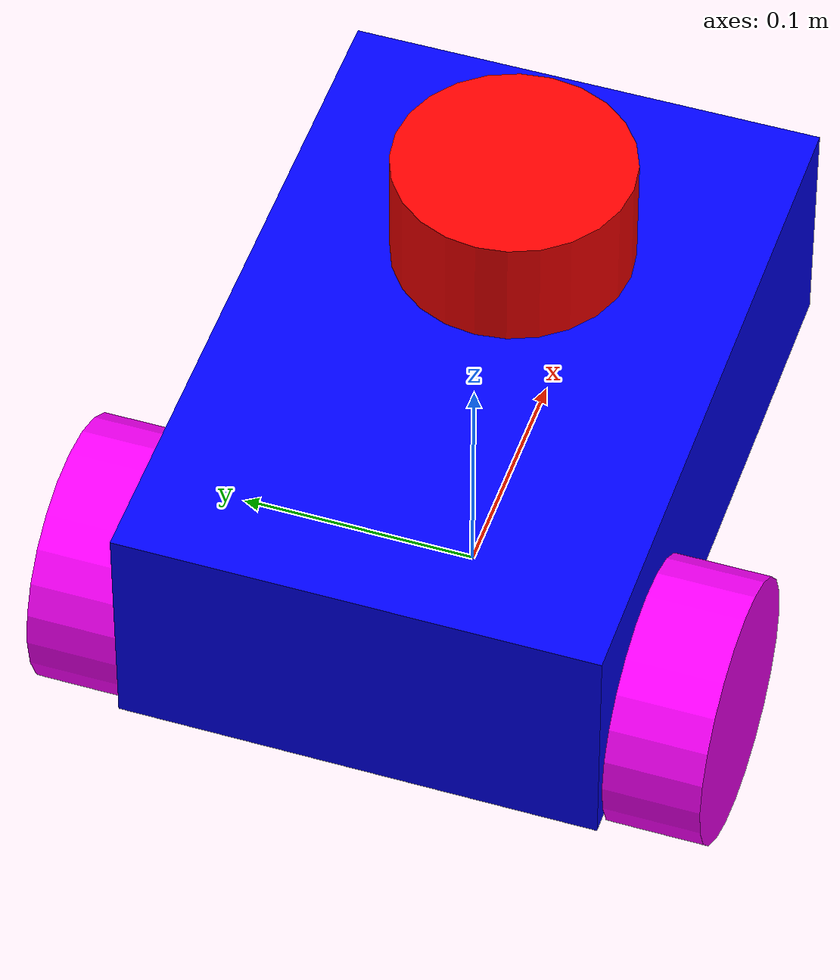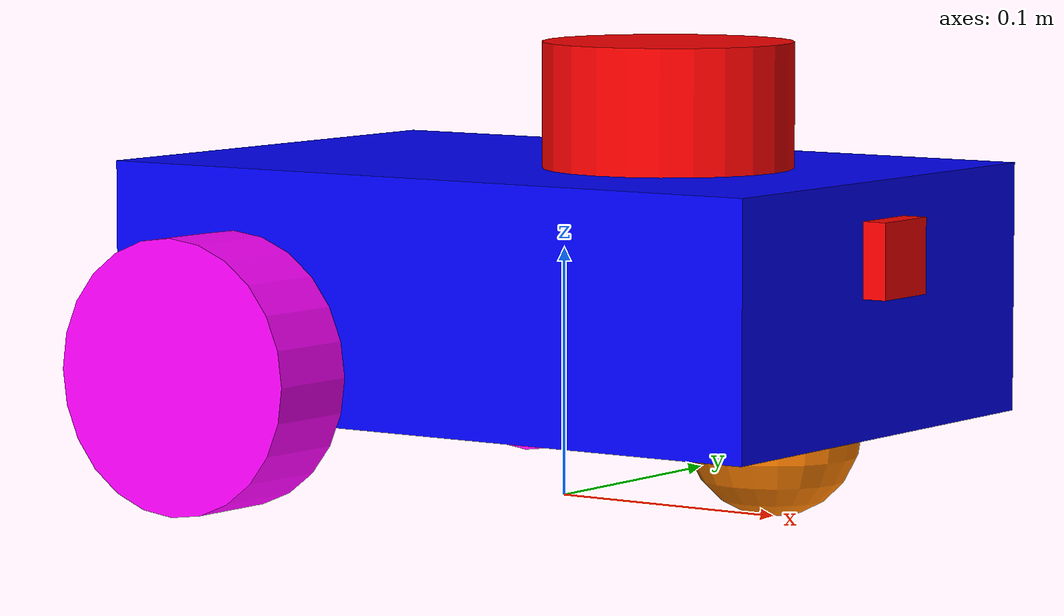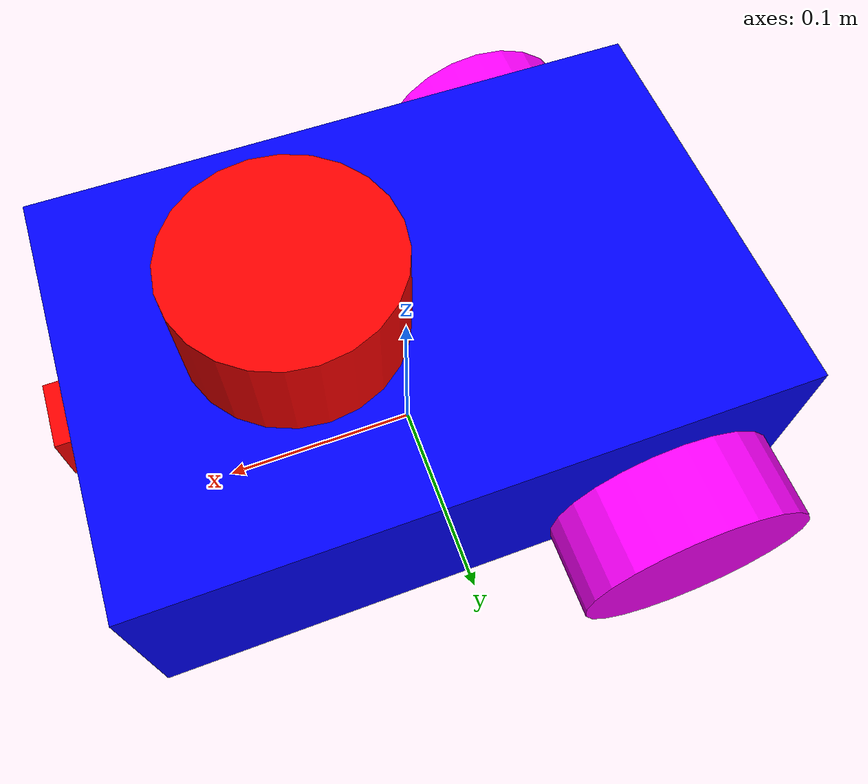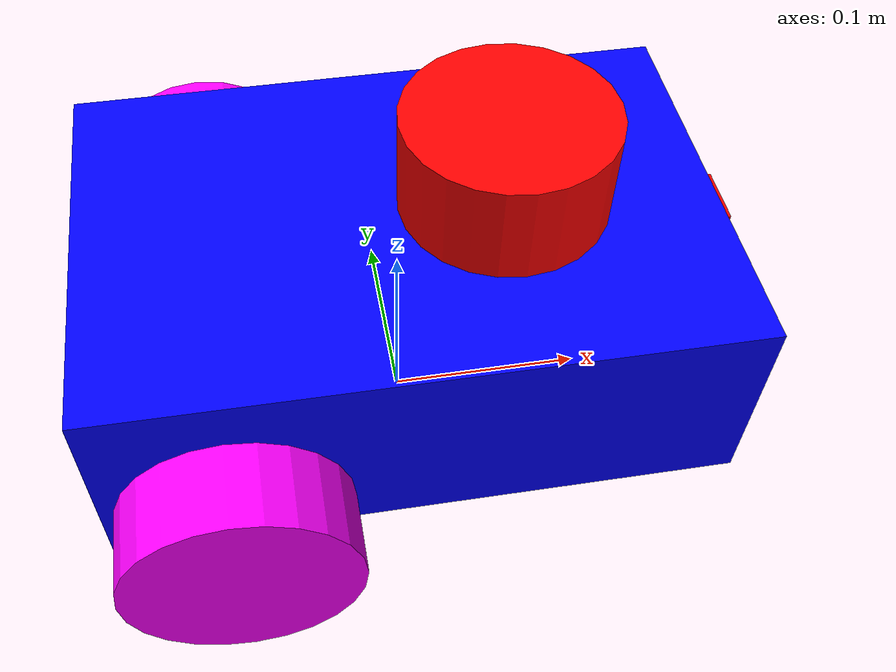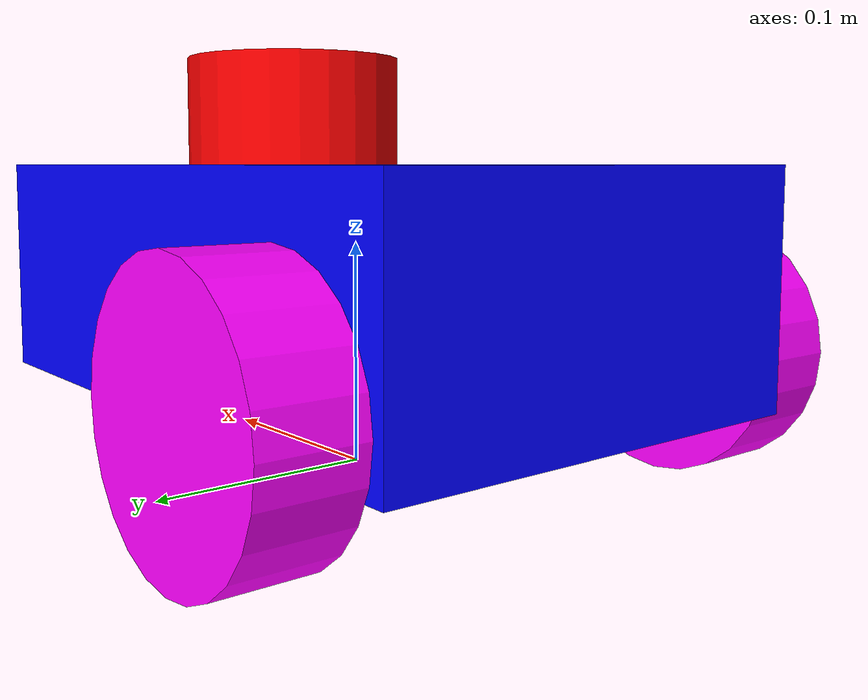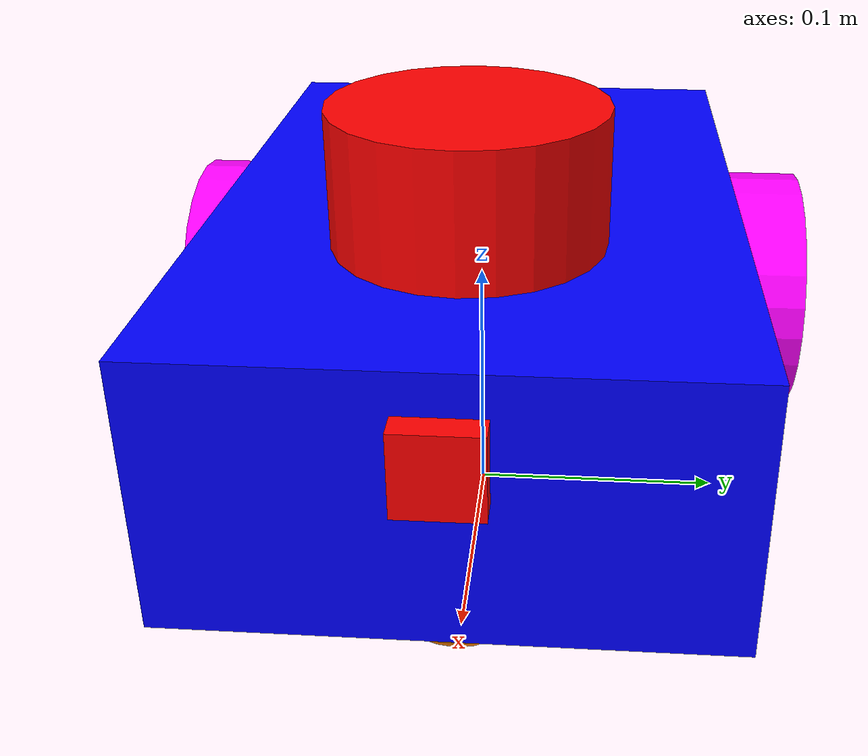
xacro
<?xml version="1.0"?>
<robot xmlns:xacro="http://www.ros.org/wiki/xacro"  name="wally_boxxy">

    <xacro:include filename="$(find wally_boxxy)/description/common_propreties.xacro" />
    <xacro:include filename="$(find wally_boxxy)/description/robot_core.xacro" />
    <xacro:include filename="$(find wally_boxxy)/description/gazebo_control.xacro" />
    <xacro:include filename="$(find wally_boxxy)/description/camera.xacro" />

</robot>

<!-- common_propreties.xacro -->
<robot xmlns:xacro="http://www.ros.org/wiki/xacro">

    <material name="purple">
                <color rgba="1 0 1 1"/>
    </material>

    <material name="blue">
                <color rgba="0 0 1 1"/>
    </material>

    <material name="red">
                <color rgba="1 0 0 1"/>
    </material>

    <material name="grey">
        <color rgba="0.5 0.5 0.5 1" />
    </material>

    <material name="yellow">
        <color rgba="1 1 0 1" />
    </material>

    <material name="orange">
        <color rgba="1 0.5 0 1" />
    </material>

        <xacro:macro name="box_inertia" params="m x y z o_xyz o_rpy">
        <inertial>
            <mass value="${m}" />
            <origin xyz="${o_xyz}" rpy="${o_rpy}" />
            <inertia ixx="${(m/12) * (y*y + z*z)}" ixy="0" ixz="0"
                     iyy="${(m/12) * (x*x + z*z)}" iyz="0"
                     izz="${(m/12) * (x*x + y*y)}" />
        </inertial>
    </xacro:macro>

    <xacro:macro name="cylinder_inertia" params="m r l o_xyz o_rpy">
        <inertial>
            <mass value="${m}" />
            <origin xyz="${o_xyz}" rpy="${o_rpy}" />
            <inertia ixx="${(m/12) * (3*r*r + l*l)}" ixy="0" ixz="0"
                     iyy="${(m/12) * (3*r*r + l*l)}" iyz="0"
                     izz="${(m/2) * (r*r)}" />
        </inertial>
    </xacro:macro>

    <xacro:macro name="sphere_inertia" params="m r o_xyz o_rpy">
        <inertial>
            <mass value="${m}" />
            <origin xyz="${o_xyz}" rpy="${o_rpy}" />
            <inertia ixx="${(2/5) * m * r * r}" ixy="0" ixz="0"
                     iyy="${(2/5) * m * r * r}" iyz="0"
                     izz="${(2/5) * m * r * r}" />
        </inertial>
    </xacro:macro>

</robot>

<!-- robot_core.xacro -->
<robot xmlns:xacro="http://www.ros.org/wiki/xacro">

    <link name="base_link">
    </link>

    <joint name="base_link_joint" type="fixed">
        <parent link="base_link" />
        <child link="chassis" />
        <origin xyz="-0.15 0 0.035" rpy="0 0 0" />
    </joint>

    <link name="chassis">
        <visual>
            <origin xyz="0.15 0 0.05" rpy="0 0 0" />
            <geometry>
                <box size="0.3 0.2 0.1" />
            </geometry>
            <material name="blue" />
        </visual>
        <collision>
            <origin xyz="0.15 0 0.05" rpy="0 0 0" />
            <geometry>
                <box size="0.3 0.2 0.1" />
            </geometry>
        </collision>
        <xacro:box_inertia m="5" x="0.3" y="0.2" z="0.1" o_xyz="0.15 0 0.05" o_rpy="0 0 0" />
    </link>

    <joint name="left_wheel_joint" type="continuous">
        <parent link="chassis" />
        <child link="left_wheel" />
        <origin xyz="0.06 0.12 0.02" rpy="-${pi/2} 0 0" />
        <axis xyz="0 0 1" />
    </joint>

    <link name="left_wheel">
        <visual>
            <origin xyz="0 0 0" rpy="0 0 0" />
            <geometry>
                <cylinder length="0.04" radius="0.055" />
            </geometry>
            <material name="purple" />
        </visual>
        <collision>
            <origin xyz="0 0 0" rpy="0 0 0" />
            <geometry>
                <cylinder length="0.04" radius="0.055" />
            </geometry>
        </collision>
        <xacro:cylinder_inertia m="0.1" r="0.055" l="0.04" o_xyz="0 0 0" o_rpy="0 0 0" />
    </link>

    <joint name="right_wheel_joint" type="continuous">
        <parent link="chassis" />
        <child link="right_wheel" />
        <origin xyz="0.06 -0.12 0.02" rpy="${pi/2} 0 0" />
        <axis xyz="0 0 1" />
    </joint>

    <link name="right_wheel">
        <visual>
            <origin xyz="0 0 0" rpy="0 0 0" />
            <geometry>
                <cylinder length="0.04" radius="0.055" />
            </geometry>
            <material name="purple" />
        </visual>
        <collision>
            <origin xyz="0 0 0" rpy="0 0 0" />
            <geometry>
                <cylinder length="0.04" radius="0.055" />
            </geometry>
        </collision>
        <xacro:cylinder_inertia m="0.1" r="0.055" l="0.04" o_xyz="0 0 0" o_rpy="0 0 0" />
    </link>

    <joint name="caster_wheel_joint" type="fixed">
        <parent link="chassis" />
        <child link="caster_wheel" />
        <origin xyz="0.25 0 0" rpy="0 0 0" />
    </joint>

    <link name="caster_wheel">
        <visual>
            <origin xyz="0 0 0" rpy="0 0 0" />
            <geometry>
                <sphere radius="0.035" />
            </geometry>
            <material name="orange" />
        </visual>
        <collision>
            <origin xyz="0 0 0" rpy="0 0 0" />
            <geometry>
                <sphere radius="0.035" />
            </geometry>
        </collision>
        <xacro:sphere_inertia m="0.1" r="0.035" o_xyz="0 0 0" o_rpy="0 0 0" />
    </link>

    <joint name="laser_joint" type="fixed">
        <parent link="chassis" />
        <child link="laser_frame" />
        <origin xyz="0.2 0 0.1" rpy="0 0 0" />
    </joint>

    <link name="laser_frame">
        <visual>
            <origin xyz="0 0 0.025" rpy="0 0 0" />
            <geometry>
                <cylinder length="0.05" radius="0.05" />
            </geometry>
            <material name="red" />
        </visual>
        <collision>
            <origin xyz="0 0 0" rpy="0 0 0" />
            <geometry>
                <cylinder length="0.05" radius="0.05" />
            </geometry>
        </collision>
        <xacro:cylinder_inertia m="0.1" r="0.05" l="0.05" o_xyz="0 0 0" o_rpy="0 0 0" />
    </link>

    <gazebo reference="laser_frame">
        <sensor name="laser" type="lidar">
            <pose>0 0 0 0 0 0</pose>
            <update_rate>10</update_rate>
            <visualize>true</visualize>
            <always_on>true</always_on>
            <!-- Tell gz-sim where to publish -->
            <topic>/model/wally_boxxy/scan</topic>
            <ray>
                <scan>
                    <horizontal>
                    <samples>360</samples>
                    <resolution>1</resolution>
                    <min_angle>-3.14159</min_angle>
                    <max_angle>3.14159</max_angle>
                    </horizontal>
                </scan>
                <range>
                    <min>0.3</min>
                    <max>12</max>
                    <resolution>0.01</resolution>
                </range>
                <noise>
                    <type>gaussian</type>
                    <mean>0.0</mean>
                    <stddev>0.01</stddev>
                </noise>
            </ray>
        </sensor>
    </gazebo>

</robot>

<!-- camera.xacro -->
<robot xmlns:xacro="http://www.ros.org/wiki/xacro">

    <joint name="camera_joint" type="fixed">
        <parent link="chassis" />
        <child link="camera_link" />
        <origin xyz="0.305 0 0.07" rpy="0 0 0" />
    </joint>

    <link name="camera_link">
        <visual>
            <origin xyz="0 0 0" rpy="0 0 0" />
            <geometry>
                <box size="0.01 0.03 0.03" />
            </geometry>
            <material name="red" />
        </visual>
        <collision>
            <origin xyz="0 0 0" rpy="0 0 0" />
            <geometry>
                <box size="0.01 0.03 0.03" />
            </geometry>
        </collision>
        <xacro:box_inertia m="0.1" x="0.01" y="0.03" z="0.03" o_xyz="0.15 0 0.05" o_rpy="0 0 0" />
    </link>

    <joint name="camera_optical_joint" type="fixed">
        <parent link="camera_link" />
        <child link="camera_link_optical" />
        <origin xyz="0 0 0" rpy="${-pi/2} 0 ${-pi/2}" />
    </joint>

    <link name="camera_link_optical">
        <!-- This link is used to define the optical frame of the camera -->
    </link>

    <gazebo reference="camera_link">

    </gazebo>

</robot>
